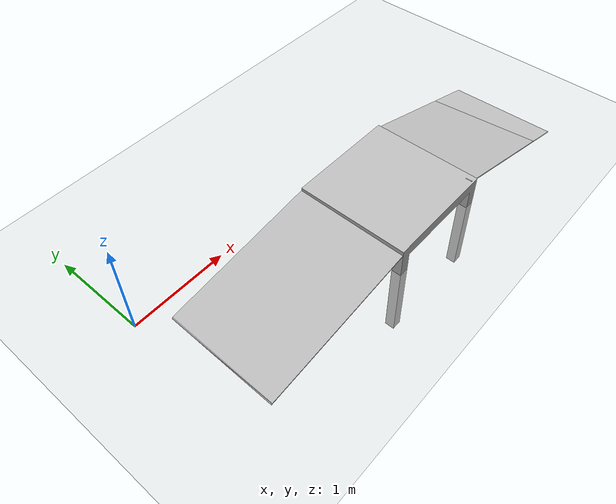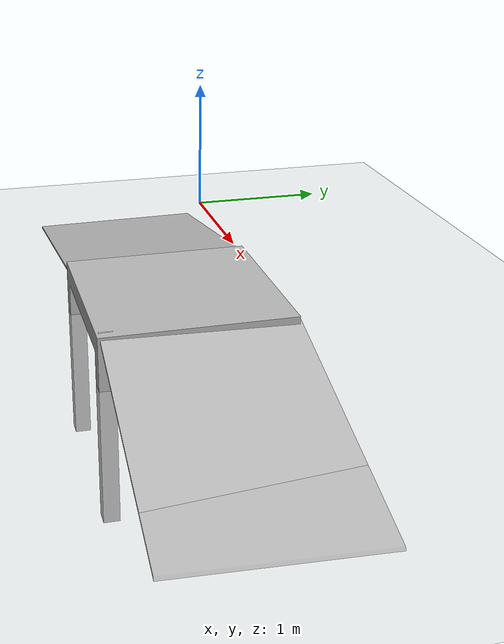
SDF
<sdf version="1.6">
 <world name="default">
  <light name="sun" type="directional">
   <pose>0 0 10 0 -0 0</pose>
   <diffuse>0.8 0.8 0.8 1</diffuse>
   <specular>0.2 0.2 0.2 1</specular>
   <attenuation>
    <range>1000</range>
    <constant>0.9</constant>
    <linear>0.01</linear>
    <quadratic>0.001</quadratic>
   </attenuation>
   <direction>-0.5 0.1 -0.9</direction>
  </light>
  <model name="ground_plane">
   <static>1</static>
   <link name="link">
    <collision name="collision">
     <geometry><plane><normal>0 0 1</normal><size>100 100</size></plane></geometry>
     <surface><friction><ode><mu>100</mu><mu2>50</mu2></ode></friction></surface>
    </collision>
    <visual name="visual">
     <cast_shadows>0</cast_shadows>
     <geometry><plane><normal>0 0 1</normal><size>100 100</size></plane></geometry>
     <material>
      <script><uri>file://media/materials/scripts/gazebo.material</uri><name>Gazebo/Grey</name></script>
     </material>
    </visual>
   </link>
  </model>
  <gravity>0 0 -9.8</gravity>
  <magnetic_field>6e-06 2.3e-05 -4.2e-05</magnetic_field>
  <atmosphere type="adiabatic"/>
  <physics name="default_physics" default="0" type="ode">
   <max_step_size>0.001</max_step_size>
   <real_time_factor>1</real_time_factor>
   <real_time_update_rate>1000</real_time_update_rate>
  </physics>
  <scene><ambient>0.4 0.4 0.4 1</ambient><background>0.7 0.7 0.7 1</background><shadows>1</shadows></scene>
  <spherical_coordinates>
   <surface_model>EARTH_WGS84</surface_model>
   <latitude_deg>0</latitude_deg>
   <longitude_deg>0</longitude_deg>
   <elevation>0</elevation>
   <heading_deg>0</heading_deg>
  </spherical_coordinates>
  <model name="nist_simple_ramp_120">
   <static>1</static>
   <link name="nist_simple_ramp_120_link">
    <collision name="collision">
     <geometry>
      <mesh><uri>model://nist_simple_ramp_120/meshes/nist_simple_ramp_120.dae</uri><scale>1 1 1</scale></mesh>
     </geometry>
    </collision>
    <visual name="visual">
     <geometry>
      <mesh><uri>model://nist_simple_ramp_120/meshes/nist_simple_ramp_120.dae</uri><scale>1 1 1</scale></mesh>
     </geometry>
    </visual>
   </link>
   <pose>0.730232 -0.767791 -0.349716 -0.615583 0.012901 -1.58165</pose>
  </model>
  <model name="nist_simple_ramp_120_0">
   <static>1</static>
   <link name="nist_simple_ramp_120_link">
    <collision name="collision">
     <geometry>
      <mesh><uri>model://nist_simple_ramp_120/meshes/nist_simple_ramp_120.dae</uri><scale>1 1 1</scale></mesh>
     </geometry>
    </collision>
    <visual name="visual">
     <geometry>
      <mesh><uri>model://nist_simple_ramp_120/meshes/nist_simple_ramp_120.dae</uri><scale>1 1 1</scale></mesh>
     </geometry>
    </visual>
   </link>
   <pose>4.11778 -0.820649 -0.429896 -0.525505 0.032531 1.55097</pose>
  </model>
  <model name="nist_elevated_floor_120">
   <static>1</static>
   <link name="nist_elevated_floor_120">
    <collision name="collision">
     <geometry>
      <mesh><uri>model://nist_elevated_floor_120/meshes/nist_elevated_floor_120.dae</uri><scale>1 1 1</scale></mesh>
     </geometry>
    </collision>
    <visual name="visual">
     <geometry>
      <mesh><uri>model://nist_elevated_floor_120/meshes/nist_elevated_floor_120.dae</uri><scale>1 1 1</scale></mesh>
     </geometry>
    </visual>
   </link>
   <pose>2.47583 -0.791844 -0.872102 0 -0 0</pose>
  </model>
  <light name="user_directional_light_0" type="directional">
   <pose>2.12541 2.7382 1 0 -0 0</pose>
   <diffuse>0.5 0.5 0.5 1</diffuse>
   <specular>0.1 0.1 0.1 1</specular>
   <direction>0.1 0.1 -0.9</direction>
   <attenuation>
    <range>20</range>
    <constant>0.5</constant>
    <linear>0.01</linear>
    <quadratic>0.001</quadratic>
   </attenuation>
  </light>
  <light name="user_directional_light_1" type="directional">
   <pose>4.0333 2.55737 1 0 -0 0</pose>
   <diffuse>0.5 0.5 0.5 1</diffuse>
   <specular>0.1 0.1 0.1 1</specular>
   <direction>0.1 0.1 -0.9</direction>
   <attenuation>
    <range>20</range>
    <constant>0.5</constant>
    <linear>0.01</linear>
    <quadratic>0.001</quadratic>
   </attenuation>
  </light>
  <light name="user_directional_light_2" type="directional">
   <pose>5.69731 2.58598 1 0 -0 0</pose>
   <diffuse>0.5 0.5 0.5 1</diffuse>
   <specular>0.1 0.1 0.1 1</specular>
   <direction>0.1 0.1 -0.9</direction>
   <attenuation>
    <range>20</range>
    <constant>0.5</constant>
    <linear>0.01</linear>
    <quadratic>0.001</quadratic>
   </attenuation>
  </light>
 </world>
</sdf>
